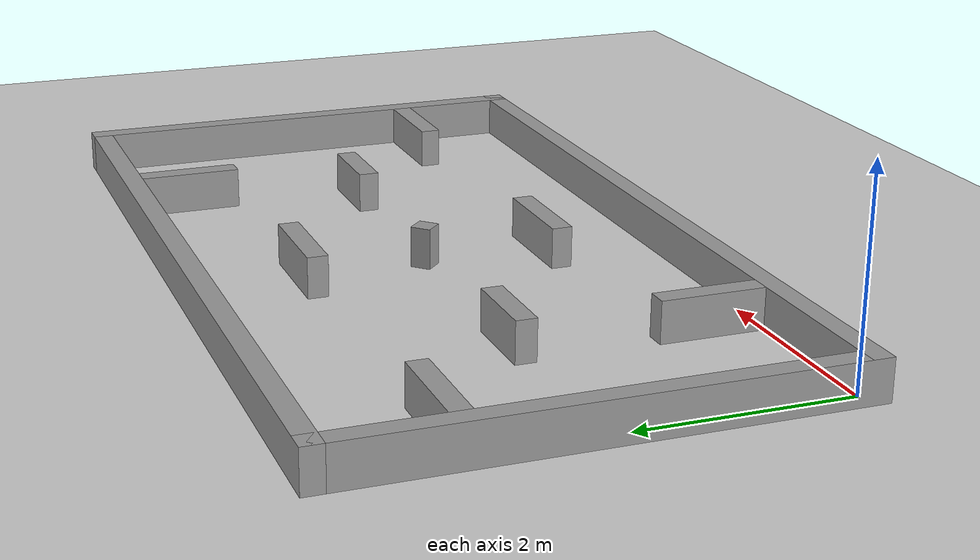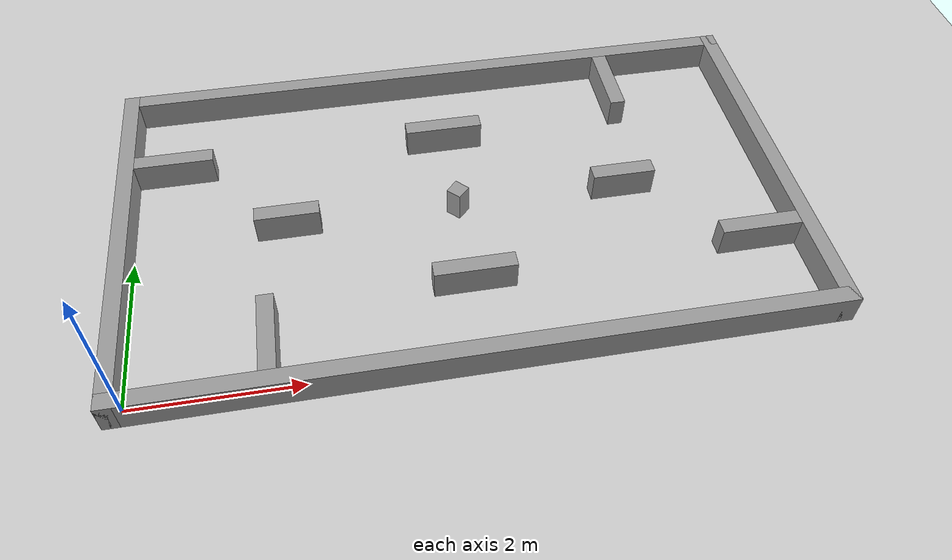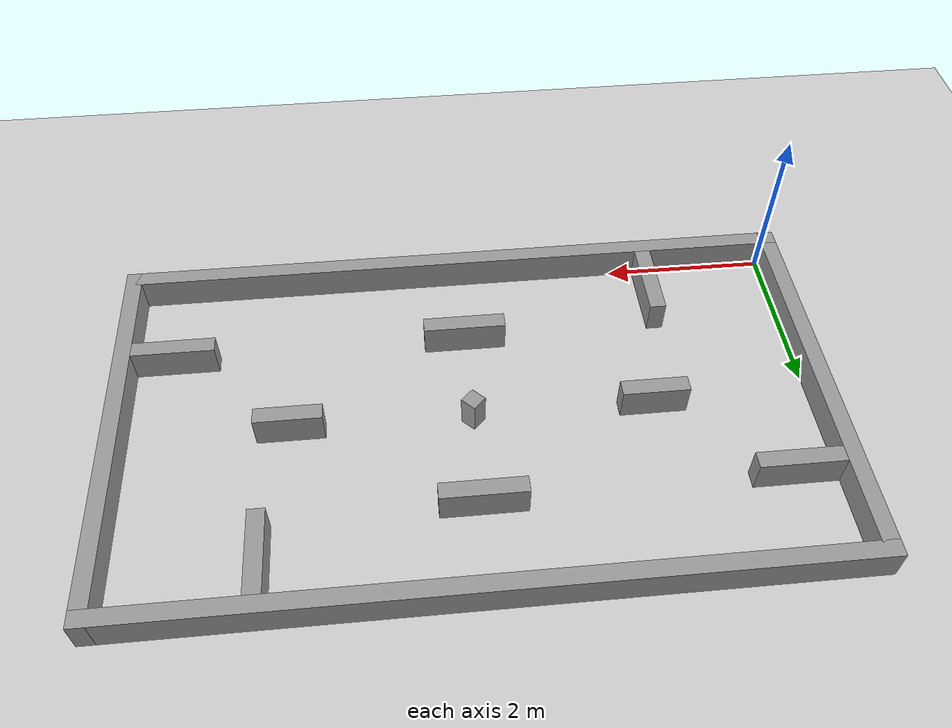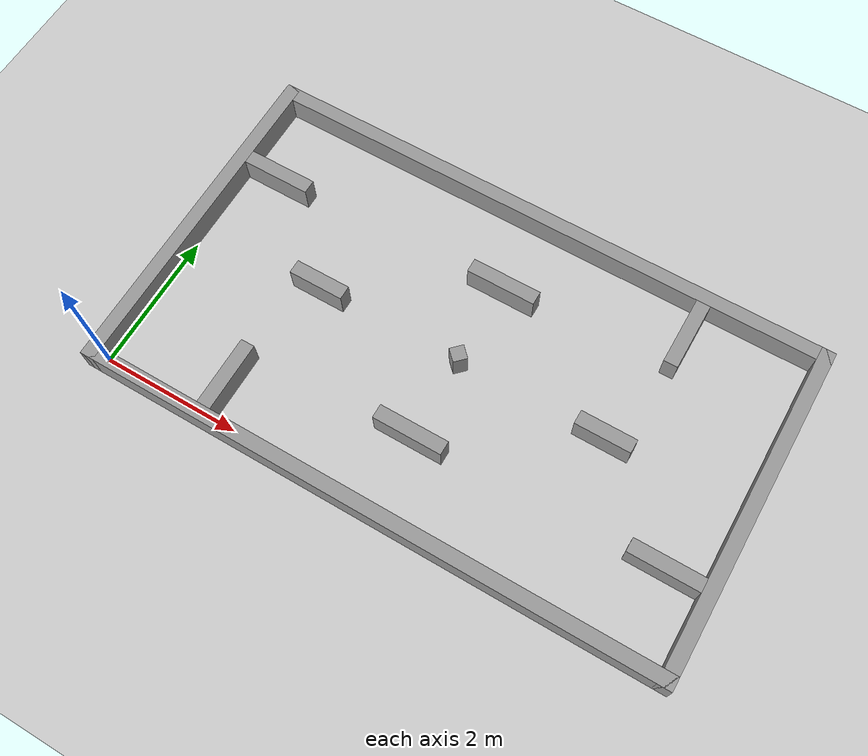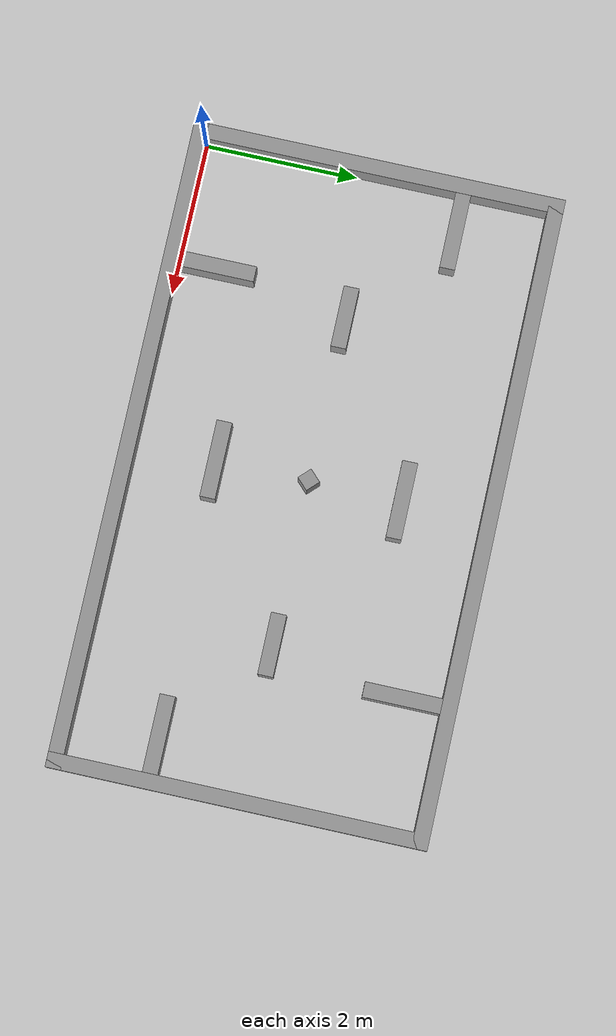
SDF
<sdf version="1.7">
 <world name="default">
  <light name="sun" type="directional">
   <pose>0 0 10 0 -0 0</pose>
   <diffuse>0.8 0.8 0.8 1</diffuse>
   <specular>0.2 0.2 0.2 1</specular>
   <attenuation>
    <range>1000</range>
    <constant>0.9</constant>
    <linear>0.01</linear>
    <quadratic>0.001</quadratic>
   </attenuation>
   <direction>-0.5 0.1 -0.9</direction>
   <spot><inner_angle>0</inner_angle><outer_angle>0</outer_angle><falloff>0</falloff></spot>
  </light>
  <model name="ground_plane">
   <static>1</static>
   <link name="link">
    <collision name="collision">
     <geometry><plane><normal>0 0 1</normal><size>100 100</size></plane></geometry>
     <surface>
      <contact><collide_bitmask>65535</collide_bitmask></contact>
      <friction><ode><mu>100</mu><mu2>50</mu2></ode></friction>
     </surface>
    </collision>
    <visual name="visual">
     <cast_shadows>0</cast_shadows>
     <geometry><plane><normal>0 0 1</normal><size>100 100</size></plane></geometry>
     <material>
      <script><uri>file://media/materials/scripts/gazebo.material</uri><name>Gazebo/Grey</name></script>
     </material>
    </visual>
   </link>
  </model>
  <gravity>0 0 -9.8</gravity>
  <magnetic_field>6e-06 2.3e-05 -4.2e-05</magnetic_field>
  <atmosphere type="adiabatic"/>
  <physics type="ode">
   <max_step_size>0.001</max_step_size>
   <real_time_factor>1</real_time_factor>
   <real_time_update_rate>1000</real_time_update_rate>
  </physics>
  <scene><ambient>0.4 0.4 0.4 1</ambient><background>0.7 0.7 0.7 1</background><shadows>1</shadows></scene>
  <spherical_coordinates>
   <surface_model>EARTH_WGS84</surface_model>
   <latitude_deg>0</latitude_deg>
   <longitude_deg>0</longitude_deg>
   <elevation>0</elevation>
   <heading_deg>0</heading_deg>
  </spherical_coordinates>
  <model name="map">
   <pose>4.04 2.25 0 0 -0 0</pose>
   <link name="Wall_21">
    <collision name="Wall_21_Collision">
     <geometry><box><size>8.48 0.2 0.4</size></box></geometry>
     <pose>0 0 0.2 0 -0 0</pose>
    </collision>
    <visual name="Wall_21_Visual">
     <pose>0 0 0.2 0 -0 0</pose>
     <geometry><box><size>8.48 0.2 0.4</size></box></geometry>
     <material>
      <script><uri>file://media/materials/scripts/gazebo.material</uri><name>Gazebo/Grey</name></script>
      <ambient>1 1 1 1</ambient>
     </material>
     <meta><layer>0</layer></meta>
    </visual>
    <pose>0 -2.34 0 0 -0 0</pose>
   </link>
   <link name="Wall_22">
    <collision name="Wall_22_Collision">
     <geometry><box><size>4.88 0.2 0.4</size></box></geometry>
     <pose>0 0 0.2 0 -0 0</pose>
    </collision>
    <visual name="Wall_22_Visual">
     <pose>0 0 0.2 0 -0 0</pose>
     <geometry><box><size>4.88 0.2 0.4</size></box></geometry>
     <material>
      <script><uri>file://media/materials/scripts/gazebo.material</uri><name>Gazebo/Grey</name></script>
      <ambient>1 1 1 1</ambient>
     </material>
     <meta><layer>0</layer></meta>
    </visual>
    <pose>4.14 0 0 0 -0 1.5708</pose>
   </link>
   <link name="Wall_23">
    <collision name="Wall_23_Collision">
     <geometry><box><size>8.48 0.2 0.4</size></box></geometry>
     <pose>0 0 0.2 0 -0 0</pose>
    </collision>
    <visual name="Wall_23_Visual">
     <pose>0 0 0.2 0 -0 0</pose>
     <geometry><box><size>8.48 0.2 0.4</size></box></geometry>
     <material>
      <script><uri>file://media/materials/scripts/gazebo.material</uri><name>Gazebo/Grey</name></script>
      <ambient>1 1 1 1</ambient>
     </material>
     <meta><layer>0</layer></meta>
    </visual>
    <pose>0 2.34 0 0 -0 3.14159</pose>
   </link>
   <link name="Wall_24">
    <collision name="Wall_24_Collision">
     <geometry><box><size>4.88 0.2 0.4</size></box></geometry>
     <pose>0 0 0.2 0 -0 0</pose>
    </collision>
    <visual name="Wall_24_Visual">
     <pose>0 0 0.2 0 -0 0</pose>
     <geometry><box><size>4.88 0.2 0.4</size></box></geometry>
     <material>
      <script><uri>file://media/materials/scripts/gazebo.material</uri><name>Gazebo/Grey</name></script>
      <ambient>1 1 1 1</ambient>
     </material>
     <meta><layer>0</layer></meta>
    </visual>
    <pose>-4.14 0 0 0 -0 -1.5708</pose>
   </link>
   <link name="Wall_26">
    <collision name="Wall_26_Collision">
     <geometry><box><size>1 0.2 0.4</size></box></geometry>
     <pose>0 0 0.2 0 -0 0</pose>
    </collision>
    <visual name="Wall_26_Visual">
     <pose>0 0 0.2 0 -0 0</pose>
     <geometry><box><size>1 0.2 0.4</size></box></geometry>
     <material>
      <script><uri>file://media/materials/scripts/gazebo.material</uri><name>Gazebo/Grey</name></script>
      <ambient>1 1 1 1</ambient>
     </material>
     <meta><layer>0</layer></meta>
    </visual>
    <pose>3.54 -1.14 0 0 -0 3.14159</pose>
   </link>
   <link name="Wall_28">
    <collision name="Wall_28_Collision">
     <geometry><box><size>1 0.2 0.4</size></box></geometry>
     <pose>0 0 0.2 0 -0 0</pose>
    </collision>
    <visual name="Wall_28_Visual">
     <pose>0 0 0.2 0 -0 0</pose>
     <geometry><box><size>1 0.2 0.4</size></box></geometry>
     <material>
      <script><uri>file://media/materials/scripts/gazebo.material</uri><name>Gazebo/Grey</name></script>
      <ambient>1 1 1 1</ambient>
     </material>
     <meta><layer>0</layer></meta>
    </visual>
    <pose>2.44 1.74 0 0 -0 -1.5708</pose>
   </link>
   <link name="Wall_30">
    <collision name="Wall_30_Collision">
     <geometry><box><size>0.8 0.2 0.4</size></box></geometry>
     <pose>0 0 0.2 0 -0 0</pose>
    </collision>
    <visual name="Wall_30_Visual">
     <pose>0 0 0.2 0 -0 0</pose>
     <geometry><box><size>0.8 0.2 0.4</size></box></geometry>
     <material>
      <script><uri>file://media/materials/scripts/gazebo.material</uri><name>Gazebo/Grey</name></script>
      <ambient>1 1 1 1</ambient>
     </material>
     <meta><layer>0</layer></meta>
    </visual>
    <pose>2.14 0 0 0 -0 3.14159</pose>
   </link>
   <link name="Wall_32">
    <collision name="Wall_32_Collision">
     <geometry><box><size>1 0.2 0.4</size></box></geometry>
     <pose>0 0 0.2 0 -0 0</pose>
    </collision>
    <visual name="Wall_32_Visual">
     <pose>0 0 0.2 0 -0 0</pose>
     <geometry><box><size>1 0.2 0.4</size></box></geometry>
     <material>
      <script><uri>file://media/materials/scripts/gazebo.material</uri><name>Gazebo/Grey</name></script>
      <ambient>1 1 1 1</ambient>
     </material>
     <meta><layer>0</layer></meta>
    </visual>
    <pose>0 -1.205 0 0 -0 3.14159</pose>
   </link>
   <link name="Wall_34">
    <collision name="Wall_34_Collision">
     <geometry><box><size>1 0.2 0.4</size></box></geometry>
     <pose>0 0 0.2 0 -0 0</pose>
    </collision>
    <visual name="Wall_34_Visual">
     <pose>0 0 0.2 0 -0 0</pose>
     <geometry><box><size>1 0.2 0.4</size></box></geometry>
     <material>
      <script><uri>file://media/materials/scripts/gazebo.material</uri><name>Gazebo/Grey</name></script>
      <ambient>1 1 1 1</ambient>
     </material>
     <meta><layer>0</layer></meta>
    </visual>
    <pose>0 1.205 0 0 -0 3.14159</pose>
   </link>
   <link name="Wall_36">
    <collision name="Wall_36_Collision">
     <geometry><box><size>0.8 0.2 0.4</size></box></geometry>
     <pose>0 0 0.2 0 -0 0</pose>
    </collision>
    <visual name="Wall_36_Visual">
     <pose>0 0 0.2 0 -0 0</pose>
     <geometry><box><size>0.8 0.2 0.4</size></box></geometry>
     <material>
      <script><uri>file://media/materials/scripts/gazebo.material</uri><name>Gazebo/Grey</name></script>
      <ambient>1 1 1 1</ambient>
     </material>
     <meta><layer>0</layer></meta>
    </visual>
    <pose>-2.14 0 0 0 -0 0</pose>
   </link>
   <link name="Wall_38">
    <collision name="Wall_38_Collision">
     <geometry><box><size>1 0.2 0.4</size></box></geometry>
     <pose>0 0 0.2 0 -0 0</pose>
    </collision>
    <visual name="Wall_38_Visual">
     <pose>0 0 0.2 0 -0 0</pose>
     <geometry><box><size>1 0.2 0.4</size></box></geometry>
     <material>
      <script><uri>file://media/materials/scripts/gazebo.material</uri><name>Gazebo/Grey</name></script>
      <ambient>1 1 1 1</ambient>
     </material>
     <meta><layer>0</layer></meta>
    </visual>
    <pose>-3.54 1.14 0 0 -0 0</pose>
   </link>
   <link name="Wall_40">
    <collision name="Wall_40_Collision">
     <geometry><box><size>1 0.2 0.4</size></box></geometry>
     <pose>0 0 0.2 0 -0 0</pose>
    </collision>
    <visual name="Wall_40_Visual">
     <pose>0 0 0.2 0 -0 0</pose>
     <geometry><box><size>1 0.2 0.4</size></box></geometry>
     <material>
      <script><uri>file://media/materials/scripts/gazebo.material</uri><name>Gazebo/Grey</name></script>
      <ambient>1 1 1 1</ambient>
     </material>
     <meta><layer>0</layer></meta>
    </visual>
    <pose>-2.44 -1.74 0 0 -0 1.5708</pose>
   </link>
   <link name="Wall_42">
    <collision name="Wall_42_Collision">
     <geometry><box><size>0.201414 0.2 0.4</size></box></geometry>
     <pose>0 0 0.2 0 -0 0</pose>
    </collision>
    <visual name="Wall_42_Visual">
     <pose>0 0 0.2 0 -0 0</pose>
     <geometry><box><size>0.201414 0.2 0.4</size></box></geometry>
     <material>
      <script><uri>file://media/materials/scripts/gazebo.material</uri><name>Gazebo/Grey</name></script>
      <ambient>1 1 1 1</ambient>
     </material>
     <meta><layer>0</layer></meta>
    </visual>
    <pose>0.0005 -0.0005 0 0 -0 -0.785398</pose>
   </link>
   <static>1</static>
  </model>
 </world>
</sdf>
